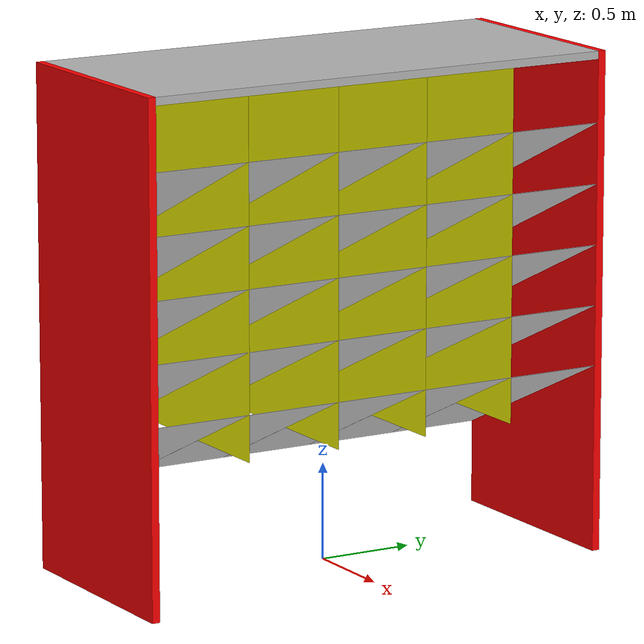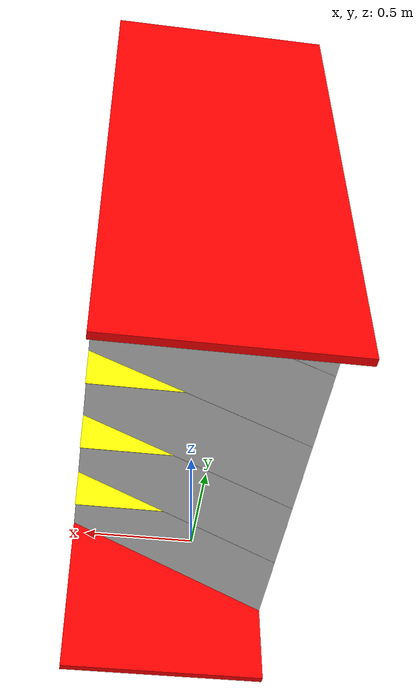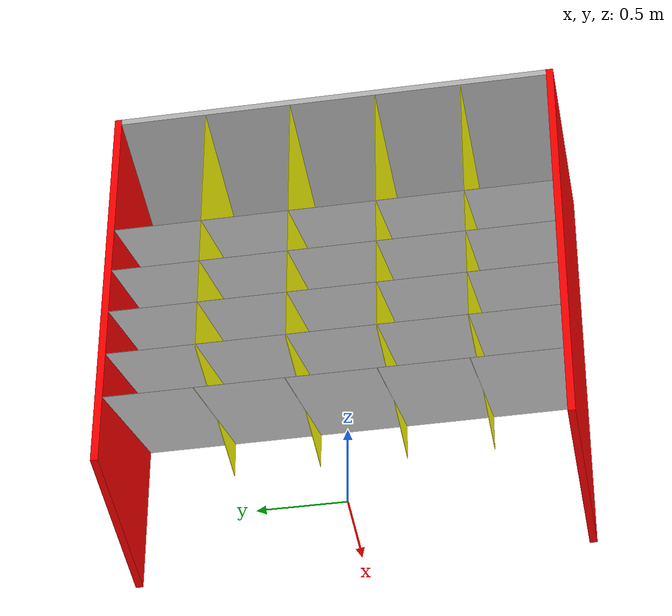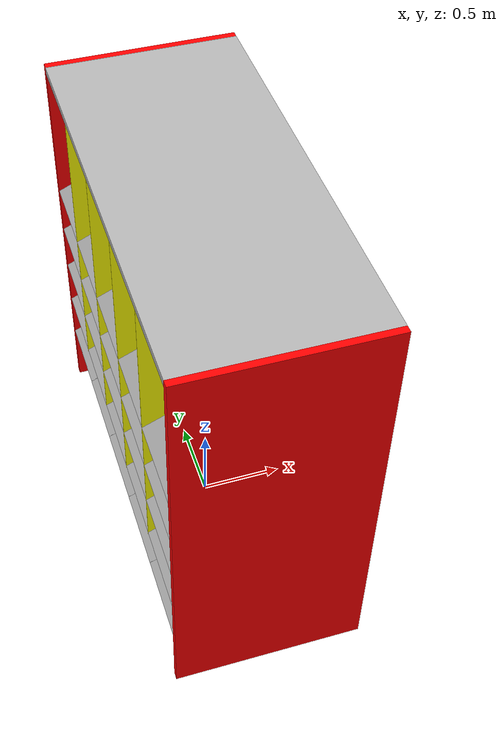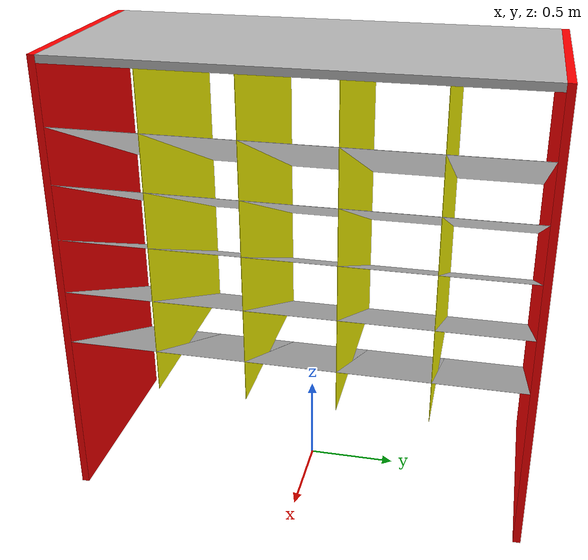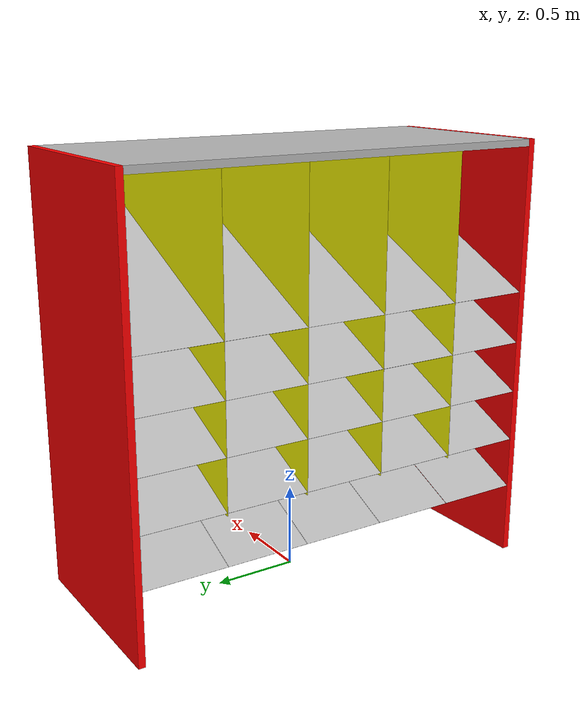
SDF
<sdf version='1.6'>
  <model name='sorting_shelf'>

  <link name='columns'>
    <pose> 0 0 0 0 0 0</pose>

    <visual name='right_wall'>
      <pose> 0 1.27075 1.284 0 0 0</pose>
      <geometry>
        <box>
        <size>1.14 0.0415 2.568</size>
        </box>
      </geometry>
      <material>
        <diffuse>1 0 0 1.0</diffuse>
      </material>
    </visual>

    <visual name='left_wall'>
      <pose> 0 -1.27075 1.284 0 0 0</pose>
      <geometry>
        <box>
        <size>1.14 0.0415 2.568</size>
        </box>
      </geometry>
      <material>
        <diffuse>1 0 0 1.0</diffuse>
      </material>
    </visual>

    <collision name='right_wall'>
      <pose> 0 1.27075 1.284 0 0 0</pose>
      <geometry>
        <box>
        <size>1.14 0.0415 2.568</size>
        </box>
      </geometry>
    </collision>

    <collision name='left_wall'>
      <pose> 0 -1.27075 1.284 0 0 0</pose>
      <geometry>
        <box>
        <size>1.14 0.0415 2.568</size>
        </box>
      </geometry>
    </collision>

    <!-- Columns : There are 4 in total -->

    <visual name='ab_col'>
      <pose> 0 0.75 1.627 0 0 0</pose>
      <geometry>
        <box>
        <size>1.14 0.002 1.79889</size>
        </box>
      </geometry>
      <material>
        <diffuse>1 1 0 1.0</diffuse>
      </material>
    </visual>

    <visual name='bc_col'>
      <pose> 0 0.25 1.627 0 0 0</pose>
      <geometry>
        <box>
        <size>1.14 0.002 1.79889</size>
        </box>
      </geometry>
      <material>
        <diffuse>1 1 0 1.0</diffuse>
      </material>
    </visual>

    <visual name='cd_col'>
      <pose> 0 -0.25 1.627 0 0 0</pose>
      <geometry>
        <box>
        <size>1.14 0.002 1.79889</size>
        </box>
      </geometry>
      <material>
        <diffuse>1 1 0 1.0</diffuse>
      </material>
    </visual>

    <visual name='de_col'>
      <pose> 0 -0.75 1.627 0 0 0</pose>
      <geometry>
        <box>
        <size>1.14 0.002 1.79889</size>
        </box>
      </geometry>
      <material>
        <diffuse>1 1 0 1.0</diffuse>
      </material>
    </visual>

    <collision name='ab_col'>
      <pose> 0 0.75 1.627 0 0 0</pose>
      <geometry>
        <box>
        <size>1.14 0.002 1.79889</size>
        </box>
      </geometry>
    </collision>

    <collision name='bc_col'>
      <pose> 0 0.25 1.627 0 0 0</pose>
      <geometry>
        <box>
        <size>1.14 0.002 1.79889</size>
        </box>
      </geometry>
    </collision>

    <collision name='cd_col'>
      <pose> 0 -0.25 1.627 0 0 0</pose>
      <geometry>
        <box>
        <size>1.14 0.002 1.79889</size>
        </box>
      </geometry>
    </collision>

    <collision name='de_col'>
      <pose> 0 -0.75 1.627 0 0 0</pose>
      <geometry>
        <box>
        <size>1.14 0.002 1.79889</size>
        </box>
      </geometry>
    </collision>
  </link>

  <!-- Dividers -->

  <link name='rows'>
    <pose> 0 0 0 0 0 0</pose>

    <visual name='top'>
      <pose> 0 0 2.54725 0 0 0</pose>
      <geometry>
        <box>
        <size>1.14 2.5 0.0415</size>
        </box>
      </geometry>
    </visual>

    <collision name='top'>
      <pose> 0 0 2.54725 0 0 0</pose>
      <geometry>
        <box>
        <size>1.14 2.5 0.0415</size>
        </box>
      </geometry>
    </collision>

    <!-- Row 1 -->

    <visual name='1a'>
      <pose> 0 -1.0008 1.940653121 0 -0.436332 0</pose>
      <geometry>
        <box>
        <size>1.25785 0.4984 0.001</size>  <!-- width, length, thickness -->
        </box>
      </geometry>
    </visual>

    <visual name='1b'>
      <pose> 0 -0.5004 1.940653121 0 -0.436332 0</pose>
      <geometry>
        <box>
        <size>1.25785 0.4984 0.001</size>  <!-- width, length, thickness -->
        </box>
      </geometry>
    </visual>

    <visual name='1c'>
      <pose> 0 0 1.940653121 0 -0.436332 0</pose>
      <geometry>
        <box>
        <size>1.25785 0.4984 0.001</size>  <!-- width, length, thickness -->
        </box>
      </geometry>
    </visual>

    <visual name='1d'>
      <pose> 0 0.5004 1.940653121 0 -0.436332 0</pose>
      <geometry>
        <box>
        <size>1.25785 0.4984 0.001</size>  <!-- width, length, thickness -->
        </box>
      </geometry>
    </visual>

    <visual name='1e'>
      <pose> 0 1.0008 1.940653121 0 -0.436332 0</pose>
      <geometry>
        <box>
        <size>1.25785 0.4984 0.001</size>  <!-- width, length, thickness -->
        </box>
      </geometry>
    </visual>

  <!-- Row 2 -->

    <visual name='2a'>
      <pose> 0 -1.0008 1.630449743 0 -0.436332 0</pose>
      <geometry>
        <box>
        <size>1.25785 0.4984 0.001</size>  <!-- width, length, thickness -->
        </box>
      </geometry>
    </visual>

    <visual name='2b'>
      <pose> 0 -0.5004 1.630449743 0 -0.436332 0</pose>
      <geometry>
        <box>
        <size>1.25785 0.4984 0.001</size>  <!-- width, length, thickness -->
        </box>
      </geometry>
    </visual>

    <visual name='2c'>
      <pose> 0 0 1.630449743 0 -0.436332 0</pose>
      <geometry>
        <box>
        <size>1.25785 0.4984 0.001</size>  <!-- width, length, thickness -->
        </box>
      </geometry>
    </visual>

    <visual name='2d'>
      <pose> 0 0.5004 1.630449743 0 -0.436332 0</pose>
      <geometry>
        <box>
        <size>1.25785 0.4984 0.001</size>  <!-- width, length, thickness -->
        </box>
      </geometry>
    </visual>

    <visual name='2e'>
      <pose> 0 1.0008 1.630449743 0 -0.436332 0</pose>
      <geometry>
        <box>
        <size>1.25785 0.4984 0.001</size>  <!-- width, length, thickness -->
        </box>
      </geometry>
    </visual>

  <!-- Row 3 -->

    <visual name='3a'>
      <pose> 0 -1.0008 1.320246365 0 -0.436332 0</pose>
      <geometry>
        <box>
        <size>1.25785 0.4984 0.001</size>  <!-- width, length, thickness -->
        </box>
      </geometry>
    </visual>

    <visual name='3b'>
      <pose> 0 -0.5004 1.320246365 0 -0.436332 0</pose>
      <geometry>
        <box>
        <size>1.25785 0.4984 0.001</size>  <!-- width, length, thickness -->
        </box>
      </geometry>
    </visual>

    <visual name='3c'>
      <pose> 0 0 1.320246365 0 -0.436332 0</pose>
      <geometry>
        <box>
        <size>1.25785 0.4984 0.001</size>  <!-- width, length, thickness -->
        </box>
      </geometry>
    </visual>

    <visual name='3d'>
      <pose> 0 0.5004 1.320246365 0 -0.436332 0</pose>
      <geometry>
        <box>
        <size>1.25785 0.4984 0.001</size>  <!-- width, length, thickness -->
        </box>
      </geometry>
    </visual>

    <visual name='3e'>
      <pose> 0 1.0008 1.320246365 0 -0.436332 0</pose>
      <geometry>
        <box>
        <size>1.25785 0.4984 0.001</size>  <!-- width, length, thickness -->
        </box>
      </geometry>
    </visual>

    <!-- Row 4 -->

    <visual name='4a'>
      <pose> 0 -1.0008 1.010042987 0 -0.436332 0</pose>
      <geometry>
        <box>
        <size>1.25785 0.4984 0.001</size>  <!-- width, length, thickness -->
        </box>
      </geometry>
    </visual>

    <visual name='4b'>
      <pose> 0 -0.5004 1.010042987 0 -0.436332 0</pose>
      <geometry>
        <box>
        <size>1.25785 0.4984 0.001</size>  <!-- width, length, thickness -->
        </box>
      </geometry>
    </visual>

    <visual name='4c'>
      <pose> 0 0 1.010042987 0 -0.436332 0</pose>
      <geometry>
        <box>
        <size>1.25785 0.4984 0.001</size>  <!-- width, length, thickness -->
        </box>
      </geometry>
    </visual>

    <visual name='4d'>
      <pose> 0 0.5004 1.010042987 0 -0.436332 0</pose>
      <geometry>
        <box>
        <size>1.25785 0.4984 0.001</size>  <!-- width, length, thickness -->
        </box>
      </geometry>
    </visual>

    <visual name='4e'>
      <pose> 0 1.0008 1.010042987 0 -0.436332 0</pose>
      <geometry>
        <box>
        <size>1.25785 0.4984 0.001</size>  <!-- width, length, thickness -->
        </box>
      </geometry>
    </visual>

  <!-- Row 5 -->

    <visual name='5a'>
      <pose> 0 -1.0008 0.6998396091 0 -0.436332 0</pose>
      <geometry>
        <box>
        <size>1.25785 0.4984 0.001</size>  <!-- width, length, thickness -->
        </box>
      </geometry>
    </visual>

    <visual name='5b'>
      <pose> 0 -0.5004 0.6998396091 0 -0.436332 0</pose>
      <geometry>
        <box>
        <size>1.25785 0.4984 0.001</size>  <!-- width, length, thickness -->
        </box>
      </geometry>
    </visual>

    <visual name='5c'>
      <pose> 0 0 0.6998396091 0 -0.436332 0</pose>
      <geometry>
        <box>
        <size>1.25785 0.4984 0.001</size>  <!-- width, length, thickness -->
        </box>
      </geometry>
    </visual>

    <visual name='5d'>
      <pose> 0 0.5004 0.6998396091 0 -0.436332 0</pose>
      <geometry>
        <box>
        <size>1.25785 0.4984 0.001</size>  <!-- width, length, thickness -->
        </box>
      </geometry>
    </visual>

    <visual name='5e'>
      <pose> 0 1.0008 0.6998396091 0 -0.436332 0</pose>
      <geometry>
        <box>
        <size>1.25785 0.4984 0.001</size>  <!-- width, length, thickness -->
        </box>
      </geometry>
    </visual>

    <!-- COLLISIONS -->
    <!-- Row 1 -->

    <collision name='1a'>
      <pose> 0 -1.0008 1.940653121 0 -0.436332 0</pose>
      <geometry>
        <box>
        <size>1.25785 0.4984 0.001</size>  <!-- width, length, thickness -->
        </box>
      </geometry>
    </collision>

    <collision name='1b'>
      <pose> 0 -0.5004 1.940653121 0 -0.436332 0</pose>
      <geometry>
        <box>
        <size>1.25785 0.4984 0.001</size>  <!-- width, length, thickness -->
        </box>
      </geometry>
    </collision>

    <collision name='1c'>
      <pose> 0 0 1.940653121 0 -0.436332 0</pose>
      <geometry>
        <box>
        <size>1.25785 0.4984 0.001</size>  <!-- width, length, thickness -->
        </box>
      </geometry>
    </collision>

    <collision name='1d'>
      <pose> 0 0.5004 1.940653121 0 -0.436332 0</pose>
      <geometry>
        <box>
        <size>1.25785 0.4984 0.001</size>  <!-- width, length, thickness -->
        </box>
      </geometry>
    </collision>

    <collision name='1e'>
      <pose> 0 1.0008 1.940653121 0 -0.436332 0</pose>
      <geometry>
        <box>
        <size>1.25785 0.4984 0.001</size>  <!-- width, length, thickness -->
        </box>
      </geometry>
    </collision>

  <!-- Row 2 -->

    <collision name='2a'>
      <pose> 0 -1.0008 1.630449743 0 -0.436332 0</pose>
      <geometry>
        <box>
        <size>1.25785 0.4984 0.001</size>  <!-- width, length, thickness -->
        </box>
      </geometry>
    </collision>

    <collision name='2b'>
      <pose> 0 -0.5004 1.630449743 0 -0.436332 0</pose>
      <geometry>
        <box>
        <size>1.25785 0.4984 0.001</size>  <!-- width, length, thickness -->
        </box>
      </geometry>
    </collision>

    <collision name='2c'>
      <pose> 0 0 1.630449743 0 -0.436332 0</pose>
      <geometry>
        <box>
        <size>1.25785 0.4984 0.001</size>  <!-- width, length, thickness -->
        </box>
      </geometry>
    </collision>

    <collision name='2d'>
      <pose> 0 0.5004 1.630449743 0 -0.436332 0</pose>
      <geometry>
        <box>
        <size>1.25785 0.4984 0.001</size>  <!-- width, length, thickness -->
        </box>
      </geometry>
    </collision>

    <collision name='2e'>
      <pose> 0 1.0008 1.630449743 0 -0.436332 0</pose>
      <geometry>
        <box>
        <size>1.25785 0.4984 0.001</size>  <!-- width, length, thickness -->
        </box>
      </geometry>
    </collision>

  <!-- Row 3 -->

    <collision name='3a'>
      <pose> 0 -1.0008 1.320246365 0 -0.436332 0</pose>
      <geometry>
        <box>
        <size>1.25785 0.4984 0.001</size>  <!-- width, length, thickness -->
        </box>
      </geometry>
    </collision>

    <collision name='3b'>
      <pose> 0 -0.5004 1.320246365 0 -0.436332 0</pose>
      <geometry>
        <box>
        <size>1.25785 0.4984 0.001</size>  <!-- width, length, thickness -->
        </box>
      </geometry>
    </collision>

    <collision name='3c'>
      <pose> 0 0 1.320246365 0 -0.436332 0</pose>
      <geometry>
        <box>
        <size>1.25785 0.4984 0.001</size>  <!-- width, length, thickness -->
        </box>
      </geometry>
    </collision>

    <collision name='3d'>
      <pose> 0 0.5004 1.320246365 0 -0.436332 0</pose>
      <geometry>
        <box>
        <size>1.25785 0.4984 0.001</size>  <!-- width, length, thickness -->
        </box>
      </geometry>
    </collision>

    <collision name='3e'>
      <pose> 0 1.0008 1.320246365 0 -0.436332 0</pose>
      <geometry>
        <box>
        <size>1.25785 0.4984 0.001</size>  <!-- width, length, thickness -->
        </box>
      </geometry>
    </collision>

    <!-- Row 4 -->

    <collision name='4a'>
      <pose> 0 -1.0008 1.010042987 0 -0.436332 0</pose>
      <geometry>
        <box>
        <size>1.25785 0.4984 0.001</size>  <!-- width, length, thickness -->
        </box>
      </geometry>
    </collision>

    <collision name='4b'>
      <pose> 0 -0.5004 1.010042987 0 -0.436332 0</pose>
      <geometry>
        <box>
        <size>1.25785 0.4984 0.001</size>  <!-- width, length, thickness -->
        </box>
      </geometry>
    </collision>

    <collision name='4c'>
      <pose> 0 0 1.010042987 0 -0.436332 0</pose>
      <geometry>
        <box>
        <size>1.25785 0.4984 0.001</size>  <!-- width, length, thickness -->
        </box>
      </geometry>
    </collision>

    <collision name='4d'>
      <pose> 0 0.5004 1.010042987 0 -0.436332 0</pose>
      <geometry>
        <box>
        <size>1.25785 0.4984 0.001</size>  <!-- width, length, thickness -->
        </box>
      </geometry>
      <surface>
        <friction>
          <ode>
            <mu>0.01</mu>
            <mu2>0.01</mu2>
            <fdir1>0 0 0</fdir1>
            <slip1>0</slip1>
            <slip2>0</slip2>
          </ode>
          <torsional>
            <coefficient>1</coefficient>
            <patch_radius>0</patch_radius>
            <surface_radius>0</surface_radius>
            <use_patch_radius>1</use_patch_radius>
            <ode>
              <slip>0</slip>
            </ode>
          </torsional>
        </friction>
        <bounce>
          <restitution_coefficient>0</restitution_coefficient>
          <threshold>1e+06</threshold>
        </bounce>
        <contact>
          <collide_without_contact>0</collide_without_contact>
          <collide_without_contact_bitmask>1</collide_without_contact_bitmask>
          <collide_bitmask>1</collide_bitmask>
          <ode>
            <soft_cfm>0</soft_cfm>
            <soft_erp>0.2</soft_erp>
            <kp>1e+13</kp>
            <kd>1</kd>
            <max_vel>0.01</max_vel>
            <min_depth>0</min_depth>
          </ode>
          <bullet>
            <split_impulse>1</split_impulse>
            <split_impulse_penetration_threshold>-0.01</split_impulse_penetration_threshold>
            <soft_cfm>0</soft_cfm>
            <soft_erp>0.2</soft_erp>
            <kp>1e+13</kp>
            <kd>1</kd>
          </bullet>
        </contact>
      </surface>
    </collision>

    <collision name='4e'>
      <pose> 0 1.0008 1.010042987 0 -0.436332 0</pose>
      <geometry>
        <box>
        <size>1.25785 0.4984 0.001</size>  <!-- width, length, thickness -->
        </box>
      </geometry>
    </collision>

  <!-- Row 5 -->

    <collision name='5a'>
      <pose> 0 -1.0008 0.6998396091 0 -0.436332 0</pose>
      <geometry>
        <box>
        <size>1.25785 0.4984 0.001</size>  <!-- width, length, thickness -->
        </box>
      </geometry>
    </collision>

    <collision name='5b'>
      <pose> 0 -0.5004 0.6998396091 0 -0.436332 0</pose>
      <geometry>
        <box>
        <size>1.25785 0.4984 0.001</size>  <!-- width, length, thickness -->
        </box>
      </geometry>
    </collision>

    <collision name='5c'>
      <pose> 0 0 0.6998396091 0 -0.436332 0</pose>
      <geometry>
        <box>
        <size>1.25785 0.4984 0.001</size>  <!-- width, length, thickness -->
        </box>
      </geometry>
    </collision>

    <collision name='5d'>
      <pose> 0 0.5004 0.6998396091 0 -0.436332 0</pose>
      <geometry>
        <box>
        <size>1.25785 0.4984 0.001</size>  <!-- width, length, thickness -->
        </box>
      </geometry>
    </collision>

    <collision name='5e'>
      <pose> 0 1.0008 0.6998396091 0 -0.436332 0</pose>
      <geometry>
        <box>
        <size>1.25785 0.4984 0.001</size>  <!-- width, length, thickness -->
        </box>
      </geometry>
    </collision>
  </link>

  <!-- joint between bottom_top and world -->
  <joint name='fixed_joint' type='fixed'>
    <child>rows</child>
    <parent>columns</parent>
    <pose>0 0 0 0 0 0 </pose>
  </joint>

  </model>
</sdf>
